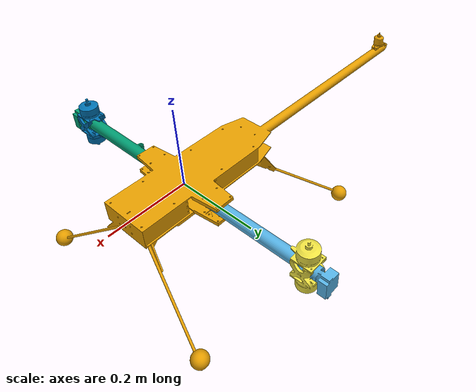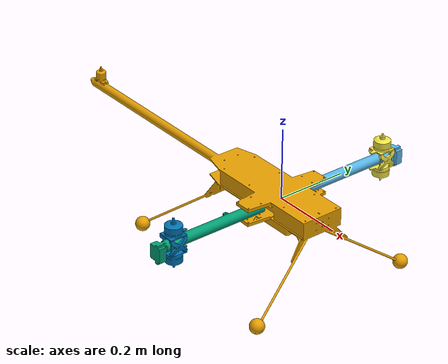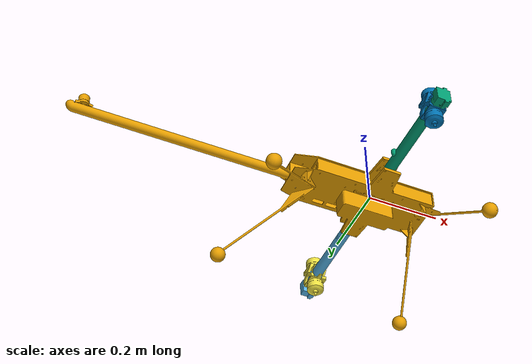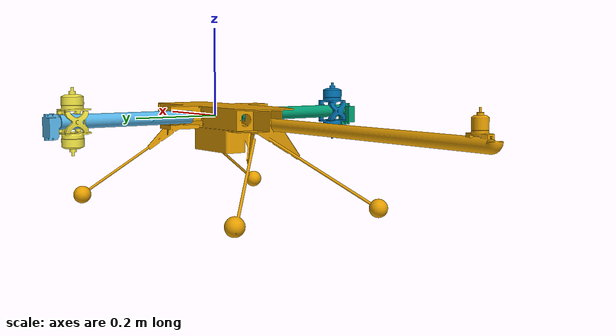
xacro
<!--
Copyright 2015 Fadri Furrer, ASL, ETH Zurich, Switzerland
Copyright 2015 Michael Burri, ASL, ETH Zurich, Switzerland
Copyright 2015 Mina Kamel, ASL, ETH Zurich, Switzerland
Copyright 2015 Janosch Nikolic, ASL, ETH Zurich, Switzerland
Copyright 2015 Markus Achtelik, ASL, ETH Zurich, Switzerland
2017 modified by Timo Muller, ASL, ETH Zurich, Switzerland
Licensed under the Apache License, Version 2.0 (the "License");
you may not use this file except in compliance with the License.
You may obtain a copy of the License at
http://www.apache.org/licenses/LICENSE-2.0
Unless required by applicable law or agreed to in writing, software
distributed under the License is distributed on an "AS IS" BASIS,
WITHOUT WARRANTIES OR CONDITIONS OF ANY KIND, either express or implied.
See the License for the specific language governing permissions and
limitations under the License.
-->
<?xml version="1.0"?>

<robot name="odonata" xmlns:xacro="http://ros.org/wiki/xacro">

  <!-- Properties -->
  <xacro:property name="namespace" value="$(arg namespace)" />
  <xacro:property name="rotor_velocity_slowdown_sim" value="10" />
  <xacro:property name="mass_main" value="2" /> <!-- [kg] -->
  <xacro:property name="y_offset" value="0.32" />
  <xacro:property name="body_height" value="0.16" />
  <xacro:property name="mass_rotor" value="0.005" /> <!-- [kg] -->
  <xacro:property name="arm_length" value="0.215" />
  <xacro:property name="rotor_offset_top" value="0.037" />
  <xacro:property name="radius_rotor" value="0.1" />
  <xacro:property name="motor_constant" value="8.54858e-06" /> <!-- [kg m/s^2] -->
  <xacro:property name="moment_constant" value="0.016" />
  <xacro:property name="time_constant_up" value="0.0125" />
  <xacro:property name="time_constant_down" value="0.025" />
  <xacro:property name="max_rot_velocity" value="838" /> <!-- [rad/s] -->
  <xacro:property name="sin30" value="0.5" />
  <xacro:property name="cos30" value="0.866025403784" />
  <xacro:property name="rotor_drag_coefficient" value="8.06428e-05" />
  <xacro:property name="rolling_moment_coefficient" value="0.000001" />

	<!-- main fuselage -->

	<link name="base_link">
		<inertial>
	        <mass value="${mass_main}" />  <!-- [kg] -->
	        <origin xyz="0 0 0" />
	        <inertia  ixx="1.0" ixy="0.0" ixz="0.0"
        			  iyy="1.0" iyz="0.0"
        			  izz="1.0"/>
     	</inertial>

	    <visual>
	   	  <origin xyz="0 0 0" rpy="0 0 0" />
	      <geometry>
	        <mesh filename="package://rotors_description/meshes/odonata/main.stl" scale="0.001 0.001 -0.001" />
	      </geometry>
	    </visual>

	    <!-- collision element comes here (optional)-->
	</link>

	<!-- left arm -->

	<link name="left_arm">
		<inertial>
	        <mass value="0" />  <!-- [kg] -->
	        <origin xyz="0 0 0" />
	        <inertia  ixx="0.0" ixy="0.0" ixz="0.0"
        			  iyy="0.0" iyz="0.0"
        			  izz="0.0"/>
     	</inertial>

	    <visual>
	   	  <origin xyz="0 0 0" rpy="0 0 0" />
	      <geometry>
	        <mesh filename="package://rotors_description/meshes/odonata/left_arm.stl" scale="0.001 0.001 -0.001" />
	      </geometry>
	    </visual>

	    <!-- collision element comes here (optional)-->
	</link>

	<joint name="base_to_left_arm" type="revolute">
		<axis xyz="0 1 0"/>
		<limit effort="1000.0" lower="${-330/360*pi}" upper="${330/360*pi}" velocity="0.5"/>
    	<parent link="base_link"/>
    	<child link="left_arm"/>
    	<origin xyz="0 0 0"/>
    </joint>

	<!-- right arm -->

	<link name="right_arm">
		<inertial>
	        <mass value="0" />  <!-- [kg] -->
	        <origin xyz="0 0 0" />
	        <inertia  ixx="0.0" ixy="0.0" ixz="0.0"
        			  iyy="0.0" iyz="0.0"
        			  izz="0.0"/>
     	</inertial>

	    <visual>
	   	  <origin xyz="0 0 0" rpy="0 0 0" />
	      <geometry>
	        <mesh filename="package://rotors_description/meshes/odonata/right_arm.stl" scale="0.001 0.001 -0.001" />
	      </geometry>
	    </visual>

	    <!-- collision element comes here (optional)-->
	</link>

	<joint name="base_to_right_arm" type="revolute">
		<axis xyz="0 1 0"/>
		<limit effort="1000.0" lower="${-330/360*pi}" upper="${330/360*pi}" velocity="0.5"/>
    	<parent link="base_link"/>
    	<child link="right_arm"/>
    	<origin xyz="0 0 0"/>
    </joint>

	<!-- left motor -->

	<link name="left_motor">
		<inertial>
	        <mass value="0.5" />  <!-- [kg] -->
	        <origin xyz="0 -${y_offset} 0" />
	        <inertia  ixx="1.0" ixy="0.0" ixz="0.0"
        			  iyy="1.0" iyz="0.0"
        			  izz="1.0"/>
     	</inertial>

	    <visual>
	   	  <origin xyz="0 -${y_offset} 0" rpy="0 0 0" />
	      <geometry>
	        <mesh filename="package://rotors_description/meshes/odonata/left_motor.stl" scale="0.001 0.001 -0.001" />
	      </geometry>
	    </visual>

	    <!-- collision element comes here (optional)-->
	</link>

	<joint name="left_arm_to_motor" type="revolute">
		<axis xyz="1 0 0"/>
		<limit effort="1000.0" lower="${-10/180*pi}" upper="${10/180*pi}" velocity="0.5"/>
    	<parent link="left_arm"/>
    	<child link="left_motor"/>
    	<origin xyz="0 ${y_offset} 0"/>
    </joint>

	<!-- right motor -->

	<link name="right_motor">
		<inertial>
	        <mass value="0.5" />  <!-- [kg] -->
	        <origin xyz="0 ${y_offset} 0" />
	        <inertia  ixx="1.0" ixy="0.0" ixz="0.0"
        			  iyy="1.0" iyz="0.0"
        			  izz="1.0"/>
     	</inertial>

	    <visual>
	   	  <origin xyz="0 ${y_offset} 0" rpy="0 0 0" />
	      <geometry>
	        <mesh filename="package://rotors_description/meshes/odonata/right_motor.stl" scale="0.001 0.001 -0.001" />
	      </geometry>
	    </visual>

	    <!-- collision element comes here (optional)-->
	</link>

	<joint name="right_arm_to_motor" type="revolute">
		<axis xyz="1 0 0"/>
		<limit effort="1000.0" lower="${-10/180*pi}" upper="${10/180*pi}" velocity="0.5"/>
    	<parent link="right_arm"/>
    	<child link="right_motor"/>
    	<origin xyz="0 -${y_offset} 0"/>
    </joint>

</robot>
